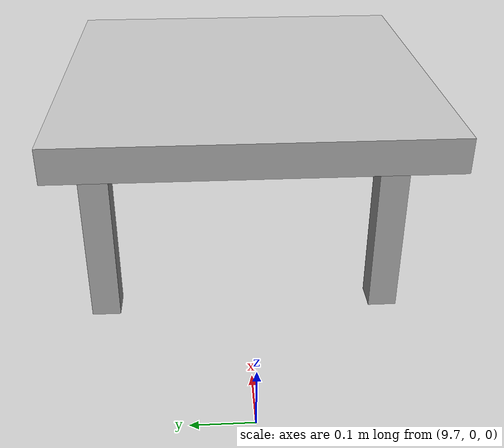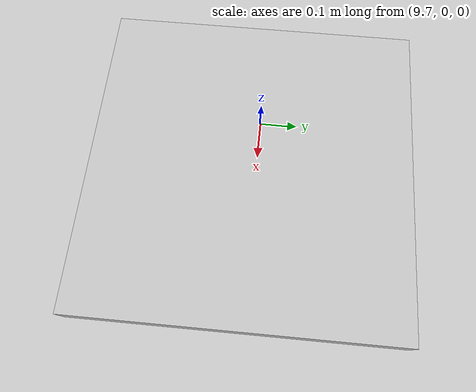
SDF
<?xml version="1.0" ?>
<sdf version="1.6">
  <model name="rgo2017/table_salon">
    <link name="1">
      <virtual_volume name="1">
        <geometry>
          <box>
            <size>0.55 0.55 0.05</size>
          </box>
        </geometry>
      </virtual_volume>
      <visual name="1">
        <geometry>
          <box>
            <size>0.55 0.55 0.05</size>
          </box>
        </geometry>
        <material>
          <ambient>0.75 0.75 0.75 1</ambient>
        </material>
      </visual>
      <pose>10 0 0.425 0 0 0</pose>
    </link>
    <link name="2">
      <virtual_volume name="2">
        <geometry>
          <box>
            <size>0.05 0.05 0.4</size>
          </box>
        </geometry>
      </virtual_volume>
      <visual name="2">
        <geometry>
          <box>
            <size>0.05 0.05 0.4</size>
          </box>
        </geometry>
        <material>
          <ambient>0.75 0.75 0.75 1</ambient>
        </material>
      </visual>
      <pose>10 -0.25 0.2 0 0 0</pose>
    </link>
    <link name="3">
      <virtual_volume name="3">
        <geometry>
          <box>
            <size>0.05 0.05 0.4</size>
          </box>
        </geometry>
      </virtual_volume>
      <visual name="3">
        <geometry>
          <box>
            <size>0.05 0.05 0.4</size>
          </box>
        </geometry>
        <material>
          <ambient>0.75 0.75 0.75 1</ambient>
        </material>
      </visual>
      <pose>10 -0.25 0.2 0 0 0</pose>
    </link>
    <link name="4">
      <virtual_volume name="4">
        <geometry>
          <box>
            <size>0.05 0.05 0.4</size>
          </box>
        </geometry>
      </virtual_volume>
      <visual name="4">
        <geometry>
          <box>
            <size>0.05 0.05 0.4</size>
          </box>
        </geometry>
        <material>
          <ambient>0.75 0.75 0.75 1</ambient>
        </material>
      </visual>
      <pose>10 0.25 0.2 0 0 0</pose>
    </link>
    <link name="5">
      <virtual_volume name="5">
        <geometry>
          <box>
            <size>0.05 0.05 0.4</size>
          </box>
        </geometry>
      </virtual_volume>
      <visual name="5">
        <geometry>
          <box>
            <size>0.05 0.05 0.4</size>
          </box>
        </geometry>
        <material>
          <ambient>0.75 0.75 0.75 1</ambient>
        </material>
      </visual>
      <pose>10 0.25 0.2 0 0 0</pose>
    </link>
    <link name="on_top_of">
      <virtual_volume name="on_top_of">
        <geometry>
          <box>
            <size>0.49 0.49 0.25</size>
          </box>
        </geometry>
        <pose>0.0 0.0 0.595 0 0 0</pose>
      </virtual_volume>
    </link>
    <link name="in_front_of">
      <virtual_volume name="in_front_of">
        <geometry>
          <box>
            <size>0.2 0.35 0.01</size>
          </box>
        </geometry>
        <pose>0.8 0.0 0.005 0 0 0</pose>
      </virtual_volume>
    </link>
    <link name="in_front_of2">
      <virtual_volume name="in_front_of2">
        <geometry>
          <box>
            <size>0.2 0.35 0.01</size>
          </box>
        </geometry>
        <pose>-0.8 0.0 0.005 0 0 0</pose>
      </virtual_volume>
    </link>
    <link name="grasp_pt_1">
     <virtual_volume name="grasp_pt_1">
        <geometry>
          <box>
           <size>0.05 0.05 0.05</size>
          </box>
        </geometry>
        <pose>0.275 0 0.425 0 0 0</pose>
       </virtual_volume>
     </link>
     <link name="grasp_pt_2">
      <virtual_volume name="grasp_pt_2">
         <geometry>
           <box>
            <size>0.05 0.05 0.05</size>
           </box>
        </geometry>
        <pose>0 0.275 0.425 0 0 0</pose>
      </virtual_volume>
     </link>
     <link name="grasp_pt_3">
        <virtual_volume name="grasp_pt_3">
            <geometry>
                <box>
                <size>0.05 0.05 0.05</size>
                </box>
            </geometry>
        <pose>-0.275 0 0.425 0 0 0</pose>
        </virtual_volume>
     </link>
     <link name="grasp_pt_4">
        <virtual_volume name="grasp_pt_4">
             <geometry>
                <box>
                <size>0.05 0.05 0.05</size>
                </box>
            </geometry>
            <pose>0 -0.275 0.425 0 0 0</pose>
        </virtual_volume>
     </link>
    <static>true</static>
  </model>
</sdf>
